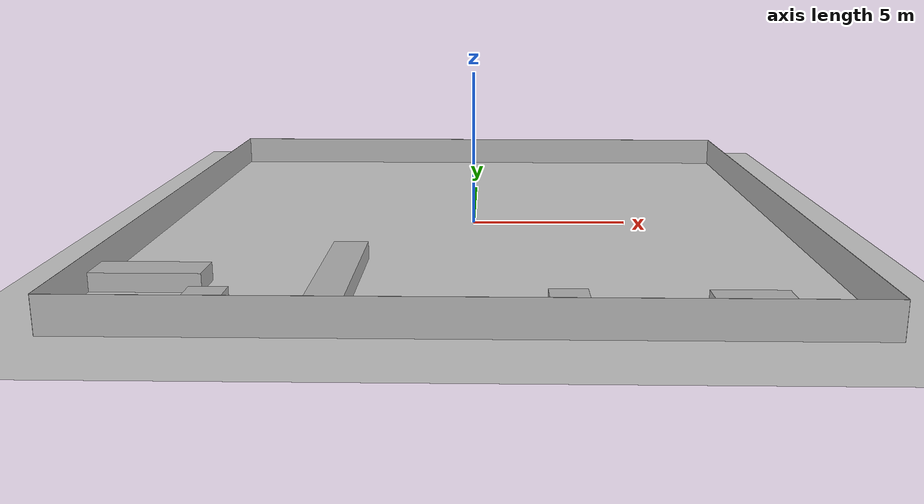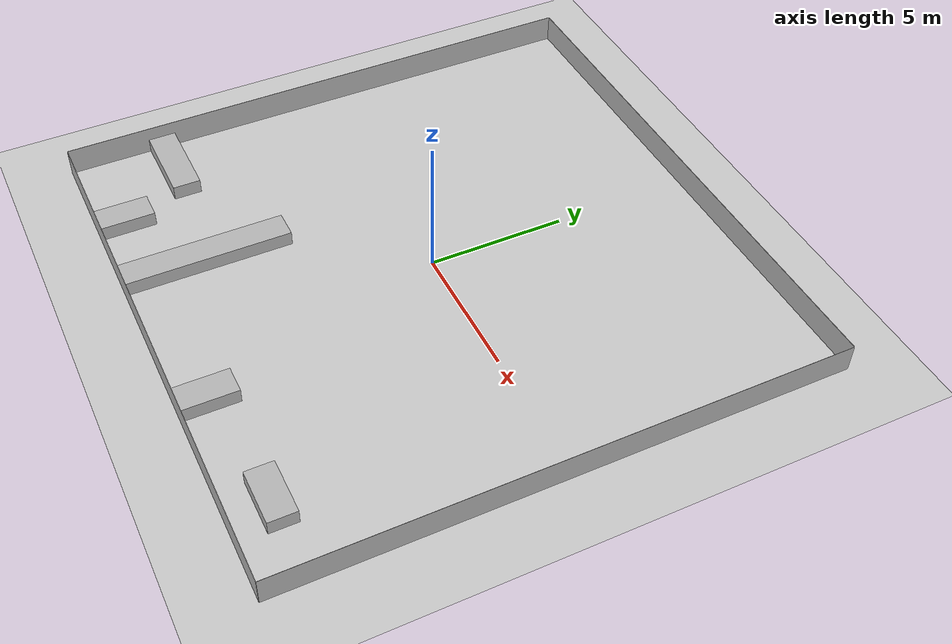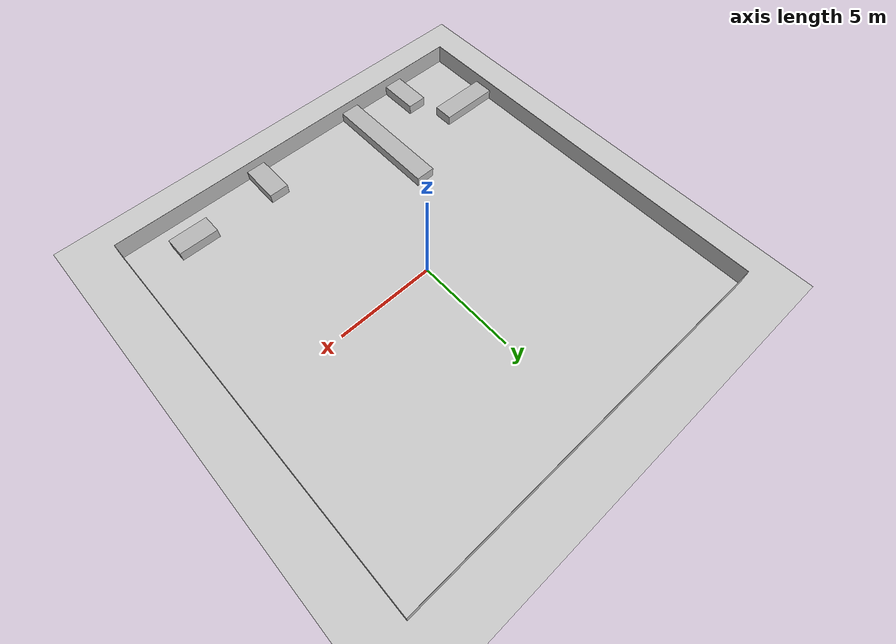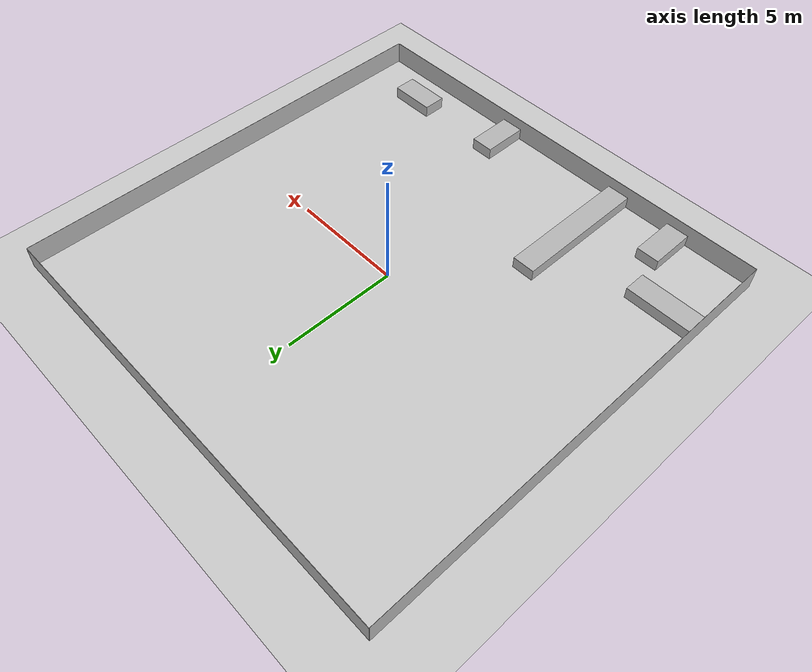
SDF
<sdf version='1.11'>
    <world name='maze'>
        <physics name='5ms' type='ignored'>
            <max_step_size>0.005</max_step_size>
            <real_time_factor>1</real_time_factor>
            <real_time_update_rate>200</real_time_update_rate>
        </physics>
        <plugin name='gz::sim::systems::Physics' filename='gz-sim-physics-system'>
        </plugin>
        <plugin name='gz::sim::systems::UserCommands' filename='gz-sim-user-commands-system' />
        <plugin name='gz::sim::systems::SceneBroadcaster' filename='gz-sim-scene-broadcaster-system' />
        <plugin name='gz::sim::systems::Contact' filename='gz-sim-contact-system' />

        <light name='sun' type='directional'>
            <cast_shadows>1</cast_shadows>
            <pose>0 0 10 0 -0 0</pose>
            <diffuse>0.8 0.8 0.8 1</diffuse>
            <specular>0.2 0.2 0.2 1</specular>
            <attenuation>
                <range>1000</range>
                <constant>0.90000000000000002</constant>
                <linear>0.01</linear>
                <quadratic>0.001</quadratic>
            </attenuation>
            <direction>-0.5 0.1 -0.9</direction>
            <spot>
                <inner_angle>0</inner_angle>
                <outer_angle>0</outer_angle>
                <falloff>0</falloff>
            </spot>
        </light>
        <gravity>0 0 -9.8</gravity>
        <magnetic_field>6e-06 2.3e-05 -4.2e-05</magnetic_field>
        <atmosphere type='adiabatic' />
        <scene>
            <ambient>0.4 0.4 0.4 1</ambient>
            <background>0.7 0.7 0.7 1</background>
            <shadows>1</shadows>
        </scene>
        <model name='ground_plane'>
            <static>1</static>
            <link name='link'>
                <collision name='collision'>
                    <geometry>
                        <plane>
                            <normal>0 0 1</normal>
                            <size>100 100</size>
                        </plane>
                    </geometry>
                    <surface>
                        <friction>
                            <torsional>
                                <coefficient>0.0</coefficient>
                            </torsional>
                            <ode />
                        </friction>
                        <bounce />
                        <contact />
                    </surface>
                </collision>
                <visual name='visual'>
                    <geometry>
                        <plane>
                            <normal>0 0 1</normal>
                            <size>100 100</size>
                        </plane>
                    </geometry>
                    <material>
                        <ambient>0.8 0.8 0.8 1</ambient>
                        <diffuse>0.8 0.8 0.8 1</diffuse>
                        <specular>0.8 0.8 0.8 1</specular>
                    </material>
                </visual>
            </link>
            <pose>0 0 0 0 -0 0</pose>
        </model>

        <!-- Border Walls -->
        <model name='wall1'>
            <static>true</static>
            <pose>-10.005 0 0 0 0 0</pose>
            <link name='link'>
                <collision name='collision'>
                    <geometry><box><size>0.01 20 2</size></box></geometry>
                </collision>
                <visual name='visual'>
                    <geometry><box><size>0.01 20 2</size></box></geometry>
                </visual>
            </link>
        </model>

        <model name='wall2'>
            <static>true</static>
            <pose>10.005 0 0 0 0 0</pose>
            <link name='link'>
                <collision name='collision'>
                    <geometry><box><size>0.01 20 2</size></box></geometry>
                </collision>
                <visual name='visual'>
                    <geometry><box><size>0.01 20 2</size></box></geometry>
                </visual>
            </link>
        </model>

        <model name='wall3'>
            <static>true</static>
            <pose>0 10.005 0 0 0 0</pose>
            <link name='link'>
                <collision name='collision'>
                    <geometry><box><size>20 0.01 2</size></box></geometry>
                </collision>
                <visual name='visual'>
                    <geometry><box><size>20 0.01 2</size></box></geometry>
                </visual>
            </link>
        </model>

        <model name='wall4'>
            <static>true</static>
            <pose>0 -10.005 0 0 0 0</pose>
            <link name='link'>
                <collision name='collision'>
                    <geometry><box><size>20 0.01 2</size></box></geometry>
                </collision>
                <visual name='visual'>
                    <geometry><box><size>20 0.01 2</size></box></geometry>
                </visual>
            </link>
        </model>

        <!-- Obstacles -->
        <model name='obstacle1'>
            <static>true</static>
            <pose>-6.5 -9 0 0 0 0</pose>
            <link name='link'>
                <collision name='collision'>
                    <geometry><box><size>1 2 1</size></box></geometry>
                </collision>
                <visual name='visual'>
                    <geometry><box><size>1 2 1</size></box></geometry>
                </visual>
            </link>
        </model>

        <model name='obstacle2'>
            <static>true</static>
            <pose>-8.5 -6.5 0 0 0 0</pose>
            <link name='link'>
                <collision name='collision'>
                    <geometry><box><size>3 1 1</size></box></geometry>
                </collision>
                <visual name='visual'>
                    <geometry><box><size>3 1 1</size></box></geometry>
                </visual>
            </link>
        </model>

        <model name='obstacle3'>
            <static>true</static>
            <pose>-3.5 -7 0 0 0 0</pose>
            <link name='link'>
                <collision name='collision'>
                    <geometry><box><size>1 6 1</size></box></geometry>
                </collision>
                <visual name='visual'>
                    <geometry><box><size>1 6 1</size></box></geometry>
                </visual>
            </link>
        </model>

        <model name='obstacle4'>
            <static>true</static>
            <pose>2.5 -9 0 0 0 0</pose>
            <link name='link'>
                <collision name='collision'>
                    <geometry><box><size>1 2 1</size></box></geometry>
                </collision>
                <visual name='visual'>
                    <geometry><box><size>1 2 1</size></box></geometry>
                </visual>
            </link>
        </model>

        <model name='obstacle5'>
            <static>true</static>
            <pose>7 -8.5 0 0 0 0</pose>
            <link name='link'>
                <collision name='collision'>
                    <geometry><box><size>2 1 1</size></box></geometry>
                </collision>
                <visual name='visual'>
                    <geometry><box><size>2 1 1</size></box></geometry>
                </visual>
            </link>
        </model>
    </world>
</sdf>
